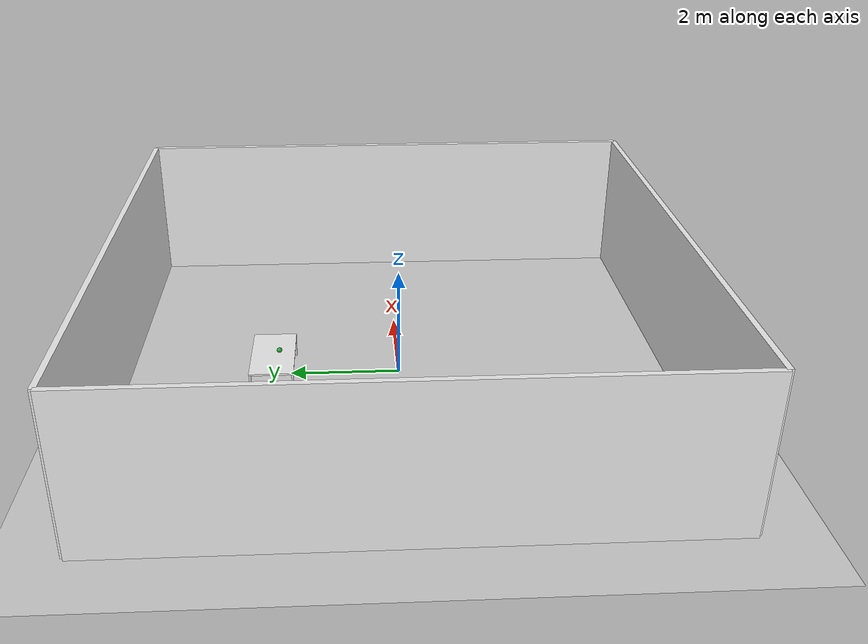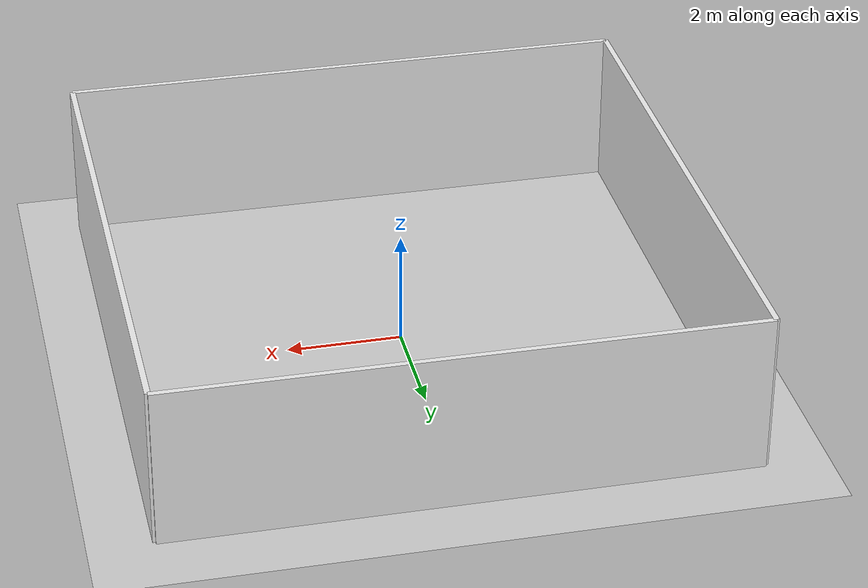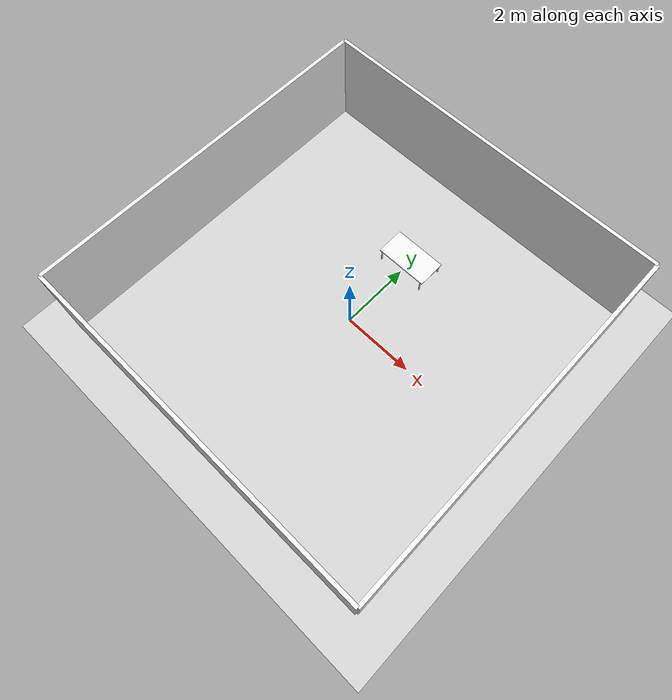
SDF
<sdf version="1.6">
 <world name="default">
  <light name="sun" type="directional">
   <pose>0 0 10 0 -0 0</pose>
   <diffuse>0.8 0.8 0.8 1</diffuse>
   <specular>0.2 0.2 0.2 1</specular>
   <attenuation>
    <range>1000</range>
    <constant>0.9</constant>
    <linear>0.01</linear>
    <quadratic>0.001</quadratic>
   </attenuation>
   <direction>-0.5 0.1 -0.9</direction>
  </light>
  <model name="ground_plane">
   <static>1</static>
   <link name="link">
    <collision name="collision">
     <geometry><plane><normal>0 0 1</normal><size>100 100</size></plane></geometry>
     <surface>
      <contact><collide_bitmask>65535</collide_bitmask></contact>
      <friction><ode><mu>100</mu><mu2>50</mu2></ode></friction>
     </surface>
    </collision>
    <visual name="visual">
     <cast_shadows>0</cast_shadows>
     <geometry><plane><normal>0 0 1</normal><size>100 100</size></plane></geometry>
     <material>
      <script><uri>file://media/materials/scripts/gazebo.material</uri><name>Gazebo/Grey</name></script>
     </material>
    </visual>
   </link>
  </model>
  <model name="wall_0">
   <static>1</static>
   <link name="link">
    <collision name="collision"><geometry><box><size>10 0.1 2.8</size></box></geometry></collision>
    <visual name="visual">
     <cast_shadows>0</cast_shadows>
     <geometry><box><size>10 0.1 2.8</size></box></geometry>
     <material>
      <script>
       <uri>model://grey_wall/materials/scripts</uri>
       <uri>model://grey_wall/materials/textures</uri>
       <name>Gazebo/White</name>
      </script>
     </material>
    </visual>
    <pose>5 0 1.4 0 -0 0</pose>
   </link>
   <pose>-4.99998 -5 0 0 -0 1.5708</pose>
  </model>
  <model name="wall_1">
   <static>1</static>
   <link name="link">
    <collision name="collision"><geometry><box><size>10 0.1 2.8</size></box></geometry></collision>
    <visual name="visual">
     <cast_shadows>0</cast_shadows>
     <geometry><box><size>10 0.1 2.8</size></box></geometry>
     <material>
      <script>
       <uri>model://grey_wall/materials/scripts</uri>
       <uri>model://grey_wall/materials/textures</uri>
       <name>Gazebo/White</name>
      </script>
     </material>
    </visual>
    <pose>5 0 1.4 0 -0 0</pose>
   </link>
   <pose>-5 -5 0 0 -0 0</pose>
  </model>
  <model name="wall_2">
   <static>1</static>
   <link name="link">
    <collision name="collision"><geometry><box><size>10 0.1 2.8</size></box></geometry></collision>
    <visual name="visual">
     <cast_shadows>0</cast_shadows>
     <geometry><box><size>10 0.1 2.8</size></box></geometry>
     <material>
      <script>
       <uri>model://grey_wall/materials/scripts</uri>
       <uri>model://grey_wall/materials/textures</uri>
       <name>Gazebo/White</name>
      </script>
     </material>
    </visual>
    <pose>5 0 1.4 0 -0 0</pose>
   </link>
   <pose>-5 5 0 0 -0 0</pose>
  </model>
  <model name="wall_3">
   <static>1</static>
   <link name="link">
    <collision name="collision"><geometry><box><size>10 0.1 2.8</size></box></geometry></collision>
    <visual name="visual">
     <cast_shadows>0</cast_shadows>
     <geometry><box><size>10 0.1 2.8</size></box></geometry>
     <material>
      <script>
       <uri>model://grey_wall/materials/scripts</uri>
       <uri>model://grey_wall/materials/textures</uri>
       <name>Gazebo/White</name>
      </script>
     </material>
    </visual>
    <pose>5 0 1.4 0 -0 0</pose>
   </link>
   <pose>5.00002 -5 0 0 -0 1.5708</pose>
  </model>
  <gravity>0 0 -9.8</gravity>
  <magnetic_field>6e-06 2.3e-05 -4.2e-05</magnetic_field>
  <atmosphere type="adiabatic"/>
  <physics name="default_physics" default="0" type="ode">
   <max_step_size>0.001</max_step_size>
   <real_time_factor>1</real_time_factor>
   <real_time_update_rate>1000</real_time_update_rate>
  </physics>
  <scene><ambient>0.4 0.4 0.4 1</ambient><background>0.7 0.7 0.7 1</background><shadows>1</shadows></scene>
  <spherical_coordinates>
   <surface_model>EARTH_WGS84</surface_model>
   <latitude_deg>0</latitude_deg>
   <longitude_deg>0</longitude_deg>
   <elevation>0</elevation>
   <heading_deg>0</heading_deg>
  </spherical_coordinates>
  <model name="small_table_white">
   <link name="link">
    <velocity_decay><linear>0</linear><angular>0</angular></velocity_decay>
    <inertial>
     <mass>1</mass>
     <inertia><ixx>1</ixx><ixy>0</ixy><ixz>0</ixz><iyy>1</iyy><iyz>0</iyz><izz>1</izz></inertia>
    </inertial>
    <visual name="front_right_leg">
     <pose>0.68 -0.38 0.5 0 -0 0</pose>
     <geometry><cylinder><radius>0.02</radius><length>1</length></cylinder></geometry>
     <material>
      <script><uri>file://media/materials/scripts/gazebo.material</uri><name>Gazebo/White</name></script>
      <shader type="pixel"><normal_map>__default__</normal_map></shader>
      <ambient>0.3 0.3 0.3 1</ambient>
      <diffuse>0.7 0.7 0.7 1</diffuse>
      <specular>0.01 0.01 0.01 1</specular>
      <emissive>0 0 0 1</emissive>
     </material>
    </visual>
    <visual name="back_left_leg">
     <pose>-0.68 0.38 0.5 0 -0 0</pose>
     <geometry><cylinder><radius>0.02</radius><length>1</length></cylinder></geometry>
     <material>
      <script><uri>file://media/materials/scripts/gazebo.material</uri><name>Gazebo/White</name></script>
      <shader type="pixel"><normal_map>__default__</normal_map></shader>
      <ambient>0.3 0.3 0.3 1</ambient>
      <diffuse>0.7 0.7 0.7 1</diffuse>
      <specular>0.01 0.01 0.01 1</specular>
      <emissive>0 0 0 1</emissive>
     </material>
    </visual>
    <visual name="back_right_leg">
     <pose>-0.68 -0.38 0.5 0 -0 0</pose>
     <geometry><cylinder><radius>0.02</radius><length>1</length></cylinder></geometry>
     <material>
      <script><uri>file://media/materials/scripts/gazebo.material</uri><name>Gazebo/White</name></script>
      <shader type="pixel"><normal_map>__default__</normal_map></shader>
      <ambient>0.3 0.3 0.3 1</ambient>
      <diffuse>0.7 0.7 0.7 1</diffuse>
      <specular>0.01 0.01 0.01 1</specular>
      <emissive>0 0 0 1</emissive>
     </material>
    </visual>
    <visual name="front_left_leg">
     <pose>0.68 0.38 0.5 0 -0 0</pose>
     <geometry><cylinder><radius>0.02</radius><length>1</length></cylinder></geometry>
     <material>
      <script><uri>file://media/materials/scripts/gazebo.material</uri><name>Gazebo/White</name></script>
      <shader type="pixel"><normal_map>__default__</normal_map></shader>
      <ambient>0.3 0.3 0.3 1</ambient>
      <diffuse>0.7 0.7 0.7 1</diffuse>
      <specular>0.01 0.01 0.01 1</specular>
      <emissive>0 0 0 1</emissive>
     </material>
    </visual>
    <visual name="visual1">
     <pose>0 0 1 0 -0 0</pose>
     <geometry><box><size>1.5 0.8 0.03</size></box></geometry>
     <material>
      <script><uri>file://media/materials/scripts/gazebo.material</uri><name>Gazebo/White</name></script>
      <shader type="pixel"><normal_map>__default__</normal_map></shader>
      <ambient>1 1 1 1</ambient>
      <diffuse>1 1 1 1</diffuse>
      <specular>0.2 0.2 0.2 1</specular>
      <emissive>0 0 0 1</emissive>
     </material>
    </visual>
    <collision name="surface">
     <pose>0 0 1 0 -0 0</pose>
     <geometry><box><size>1.5 0.8 0.03</size></box></geometry>
     <surface>
      <friction>
       <ode><mu>1</mu><mu2>1</mu2><fdir1>0 0 0</fdir1><slip1>0</slip1><slip2>0</slip2></ode>
       <torsional>
        <coefficient>1</coefficient>
        <patch_radius>0</patch_radius>
        <surface_radius>0</surface_radius>
        <use_patch_radius>1</use_patch_radius>
        <ode><slip>0</slip></ode>
       </torsional>
      </friction>
      <bounce><restitution_coefficient>0</restitution_coefficient><threshold>1e+06</threshold></bounce>
      <contact>
       <collide_without_contact>0</collide_without_contact>
       <collide_without_contact_bitmask>1</collide_without_contact_bitmask>
       <collide_bitmask>1</collide_bitmask>
       <ode>
        <soft_cfm>0</soft_cfm>
        <soft_erp>0.2</soft_erp>
        <kp>1e+13</kp>
        <kd>1</kd>
        <max_vel>0.01</max_vel>
        <min_depth>0</min_depth>
       </ode>
       <bullet>
        <split_impulse>1</split_impulse>
        <split_impulse_penetration_threshold>-0.01</split_impulse_penetration_threshold>
        <soft_cfm>0</soft_cfm>
        <soft_erp>0.2</soft_erp>
        <kp>1e+13</kp>
        <kd>1</kd>
       </bullet>
      </contact>
     </surface>
    </collision>
    <collision name="front_left_leg">
     <pose>0.68 0.38 0.5 0 -0 0</pose>
     <geometry><cylinder><radius>0.02</radius><length>1</length></cylinder></geometry>
     <surface>
      <friction>
       <ode><mu>1</mu><mu2>1</mu2><fdir1>0 0 0</fdir1><slip1>0</slip1><slip2>0</slip2></ode>
       <torsional>
        <coefficient>1</coefficient>
        <patch_radius>0</patch_radius>
        <surface_radius>0</surface_radius>
        <use_patch_radius>1</use_patch_radius>
        <ode><slip>0</slip></ode>
       </torsional>
      </friction>
      <bounce><restitution_coefficient>0</restitution_coefficient><threshold>1e+06</threshold></bounce>
      <contact>
       <collide_without_contact>0</collide_without_contact>
       <collide_without_contact_bitmask>1</collide_without_contact_bitmask>
       <collide_bitmask>1</collide_bitmask>
       <ode>
        <soft_cfm>0</soft_cfm>
        <soft_erp>0.2</soft_erp>
        <kp>1e+13</kp>
        <kd>1</kd>
        <max_vel>0.01</max_vel>
        <min_depth>0</min_depth>
       </ode>
       <bullet>
        <split_impulse>1</split_impulse>
        <split_impulse_penetration_threshold>-0.01</split_impulse_penetration_threshold>
        <soft_cfm>0</soft_cfm>
        <soft_erp>0.2</soft_erp>
        <kp>1e+13</kp>
        <kd>1</kd>
       </bullet>
      </contact>
     </surface>
    </collision>
    <collision name="front_right_leg">
     <pose>0.68 -0.38 0.5 0 -0 0</pose>
     <geometry><cylinder><radius>0.02</radius><length>1</length></cylinder></geometry>
     <surface>
      <friction>
       <ode><mu>1</mu><mu2>1</mu2><fdir1>0 0 0</fdir1><slip1>0</slip1><slip2>0</slip2></ode>
       <torsional>
        <coefficient>1</coefficient>
        <patch_radius>0</patch_radius>
        <surface_radius>0</surface_radius>
        <use_patch_radius>1</use_patch_radius>
        <ode><slip>0</slip></ode>
       </torsional>
      </friction>
      <bounce><restitution_coefficient>0</restitution_coefficient><threshold>1e+06</threshold></bounce>
      <contact>
       <collide_without_contact>0</collide_without_contact>
       <collide_without_contact_bitmask>1</collide_without_contact_bitmask>
       <collide_bitmask>1</collide_bitmask>
       <ode>
        <soft_cfm>0</soft_cfm>
        <soft_erp>0.2</soft_erp>
        <kp>1e+13</kp>
        <kd>1</kd>
        <max_vel>0.01</max_vel>
        <min_depth>0</min_depth>
       </ode>
       <bullet>
        <split_impulse>1</split_impulse>
        <split_impulse_penetration_threshold>-0.01</split_impulse_penetration_threshold>
        <soft_cfm>0</soft_cfm>
        <soft_erp>0.2</soft_erp>
        <kp>1e+13</kp>
        <kd>1</kd>
       </bullet>
      </contact>
     </surface>
    </collision>
    <collision name="back_right_leg">
     <pose>-0.68 -0.38 0.5 0 -0 0</pose>
     <geometry><cylinder><radius>0.02</radius><length>1</length></cylinder></geometry>
     <surface>
      <friction>
       <ode><mu>1</mu><mu2>1</mu2><fdir1>0 0 0</fdir1><slip1>0</slip1><slip2>0</slip2></ode>
       <torsional>
        <coefficient>1</coefficient>
        <patch_radius>0</patch_radius>
        <surface_radius>0</surface_radius>
        <use_patch_radius>1</use_patch_radius>
        <ode><slip>0</slip></ode>
       </torsional>
      </friction>
      <bounce><restitution_coefficient>0</restitution_coefficient><threshold>1e+06</threshold></bounce>
      <contact>
       <collide_without_contact>0</collide_without_contact>
       <collide_without_contact_bitmask>1</collide_without_contact_bitmask>
       <collide_bitmask>1</collide_bitmask>
       <ode>
        <soft_cfm>0</soft_cfm>
        <soft_erp>0.2</soft_erp>
        <kp>1e+13</kp>
        <kd>1</kd>
        <max_vel>0.01</max_vel>
        <min_depth>0</min_depth>
       </ode>
       <bullet>
        <split_impulse>1</split_impulse>
        <split_impulse_penetration_threshold>-0.01</split_impulse_penetration_threshold>
        <soft_cfm>0</soft_cfm>
        <soft_erp>0.2</soft_erp>
        <kp>1e+13</kp>
        <kd>1</kd>
       </bullet>
      </contact>
     </surface>
    </collision>
    <collision name="back_left_leg">
     <pose>-0.68 0.38 0.5 0 -0 0</pose>
     <geometry><cylinder><radius>0.02</radius><length>1</length></cylinder></geometry>
     <surface>
      <friction>
       <ode><mu>1</mu><mu2>1</mu2><fdir1>0 0 0</fdir1><slip1>0</slip1><slip2>0</slip2></ode>
       <torsional>
        <coefficient>1</coefficient>
        <patch_radius>0</patch_radius>
        <surface_radius>0</surface_radius>
        <use_patch_radius>1</use_patch_radius>
        <ode><slip>0</slip></ode>
       </torsional>
      </friction>
      <bounce><restitution_coefficient>0</restitution_coefficient><threshold>1e+06</threshold></bounce>
      <contact>
       <collide_without_contact>0</collide_without_contact>
       <collide_without_contact_bitmask>1</collide_without_contact_bitmask>
       <collide_bitmask>1</collide_bitmask>
       <ode>
        <soft_cfm>0</soft_cfm>
        <soft_erp>0.2</soft_erp>
        <kp>1e+13</kp>
        <kd>1</kd>
        <max_vel>0.01</max_vel>
        <min_depth>0</min_depth>
       </ode>
       <bullet>
        <split_impulse>1</split_impulse>
        <split_impulse_penetration_threshold>-0.01</split_impulse_penetration_threshold>
        <soft_cfm>0</soft_cfm>
        <soft_erp>0.2</soft_erp>
        <kp>1e+13</kp>
        <kd>1</kd>
       </bullet>
      </contact>
     </surface>
    </collision>
   </link>
   <static>1</static>
   <pose>0.027618 2.3185 -0.59551 0 -0 0</pose>
  </model>
  <model name="unit_sphere_green">
   <link name="link">
    <inertial>
     <mass>1</mass>
     <inertia><ixx>0.1</ixx><ixy>0</ixy><ixz>0</ixz><iyy>0.1</iyy><iyz>0</iyz><izz>0.1</izz></inertia>
    </inertial>
    <visual name="visual">
     <geometry><sphere><radius>0.0481804</radius></sphere></geometry>
     <material>
      <script><name>Gazebo/Green</name><uri>file://media/materials/scripts/gazebo.material</uri></script>
      <shader type="pixel"><normal_map>__default__</normal_map></shader>
      <ambient>0 1 0 1</ambient>
      <diffuse>0 1 0 1</diffuse>
      <specular>0.1 0.1 0.1 1</specular>
      <emissive>0 0 0 1</emissive>
     </material>
    </visual>
    <collision name="collision">
     <geometry><sphere><radius>0.04818</radius></sphere></geometry>
     <surface>
      <friction>
       <ode><mu>1</mu><mu2>1</mu2><fdir1>0 0 0</fdir1><slip1>0</slip1><slip2>0</slip2></ode>
       <torsional>
        <coefficient>1</coefficient>
        <patch_radius>0</patch_radius>
        <surface_radius>0</surface_radius>
        <use_patch_radius>1</use_patch_radius>
        <ode><slip>0</slip></ode>
       </torsional>
      </friction>
      <bounce><restitution_coefficient>0</restitution_coefficient><threshold>1e+06</threshold></bounce>
      <contact>
       <collide_without_contact>0</collide_without_contact>
       <collide_without_contact_bitmask>1</collide_without_contact_bitmask>
       <collide_bitmask>1</collide_bitmask>
       <ode>
        <soft_cfm>0</soft_cfm>
        <soft_erp>0.2</soft_erp>
        <kp>1e+13</kp>
        <kd>1</kd>
        <max_vel>0.01</max_vel>
        <min_depth>0</min_depth>
       </ode>
       <bullet>
        <split_impulse>1</split_impulse>
        <split_impulse_penetration_threshold>-0.01</split_impulse_penetration_threshold>
        <soft_cfm>0</soft_cfm>
        <soft_erp>0.2</soft_erp>
        <kp>1e+13</kp>
        <kd>1</kd>
       </bullet>
      </contact>
     </surface>
    </collision>
   </link>
   <static>0</static>
   <pose>0.060762 2.20052 0.46767 0 -0 0</pose>
  </model>
 </world>
</sdf>
